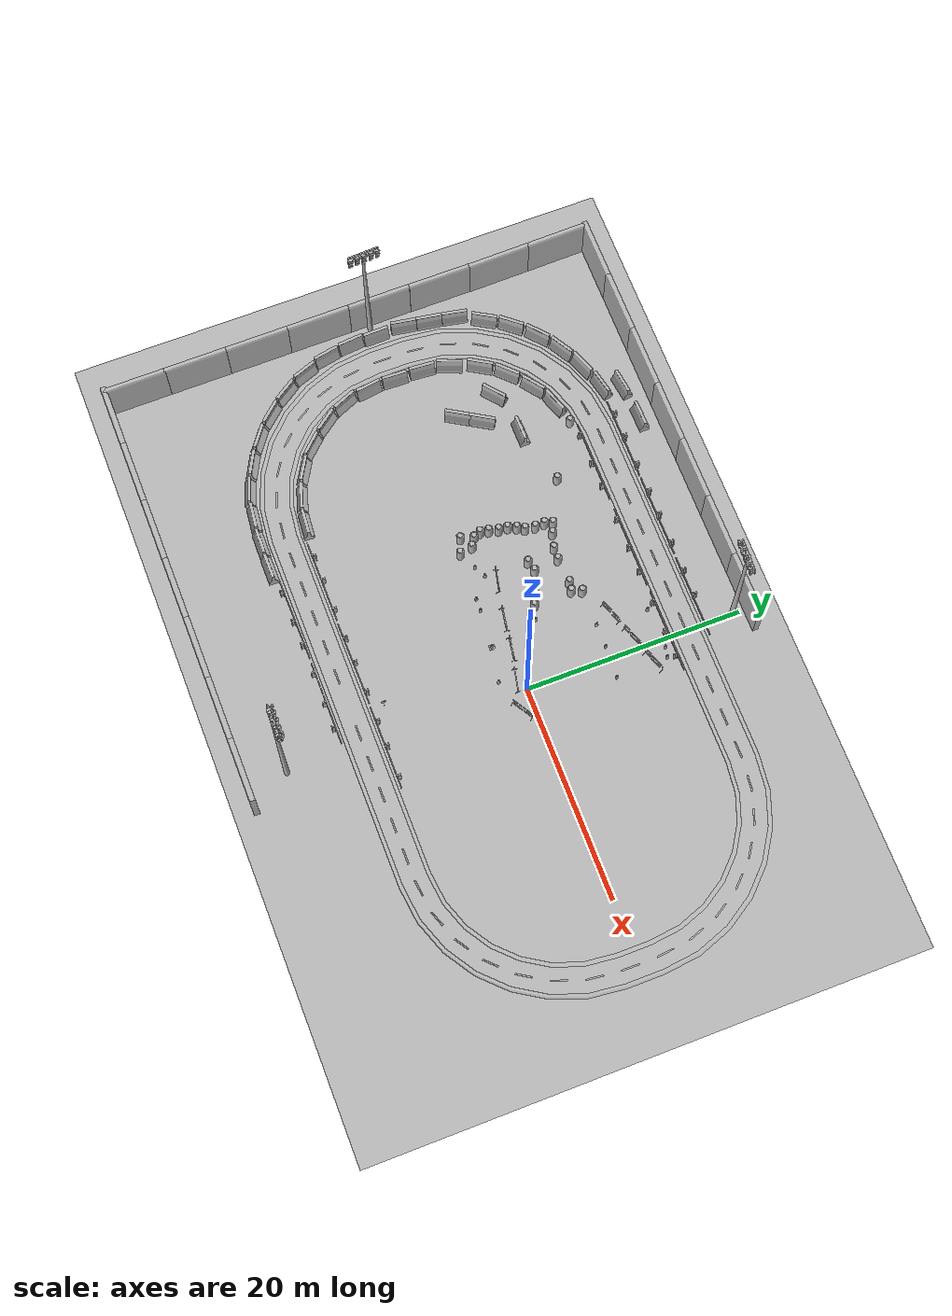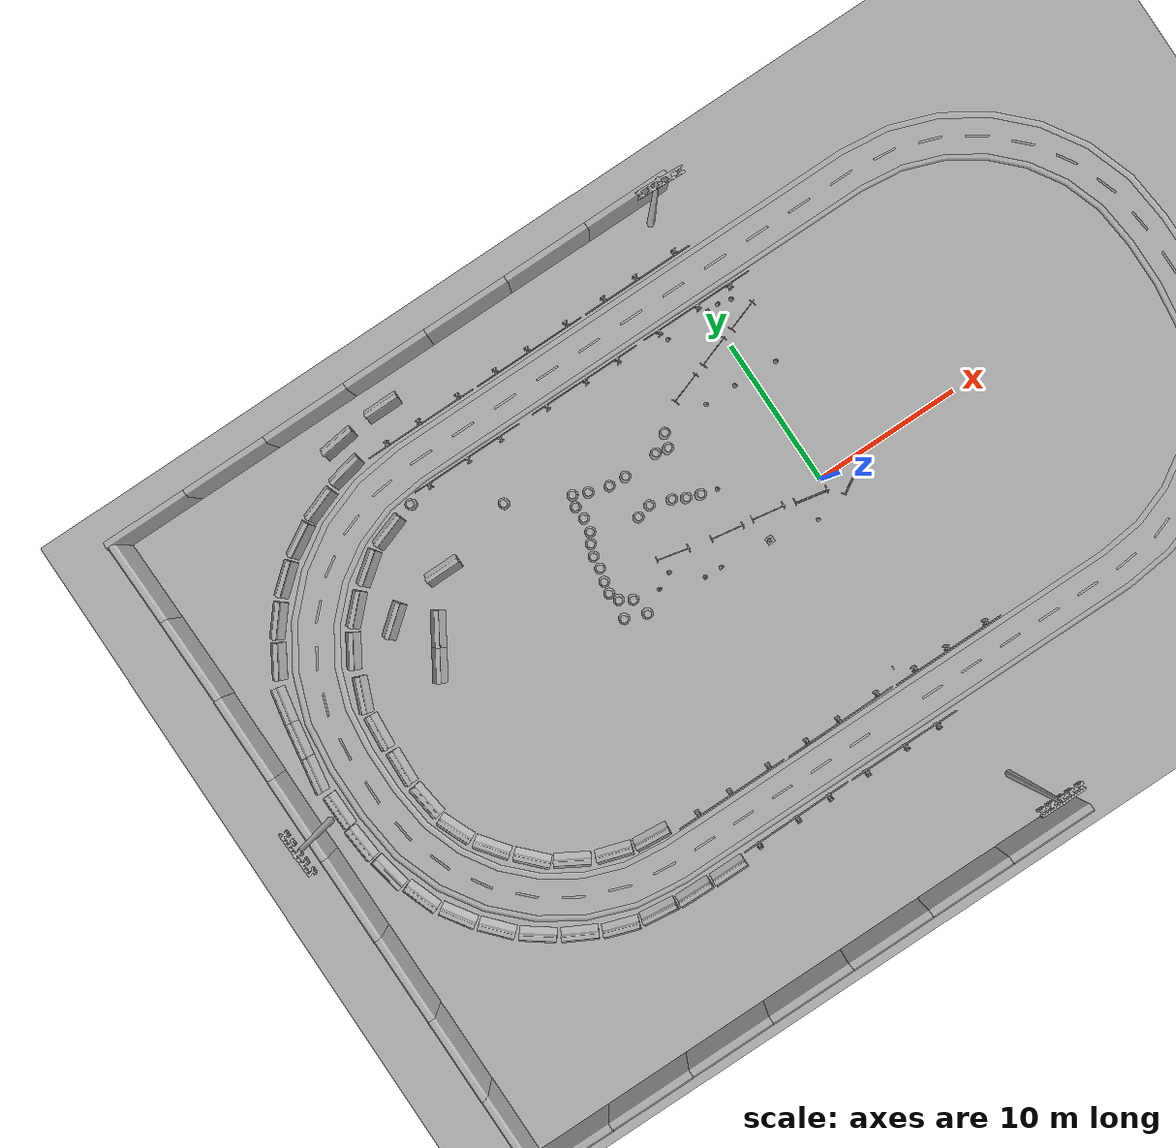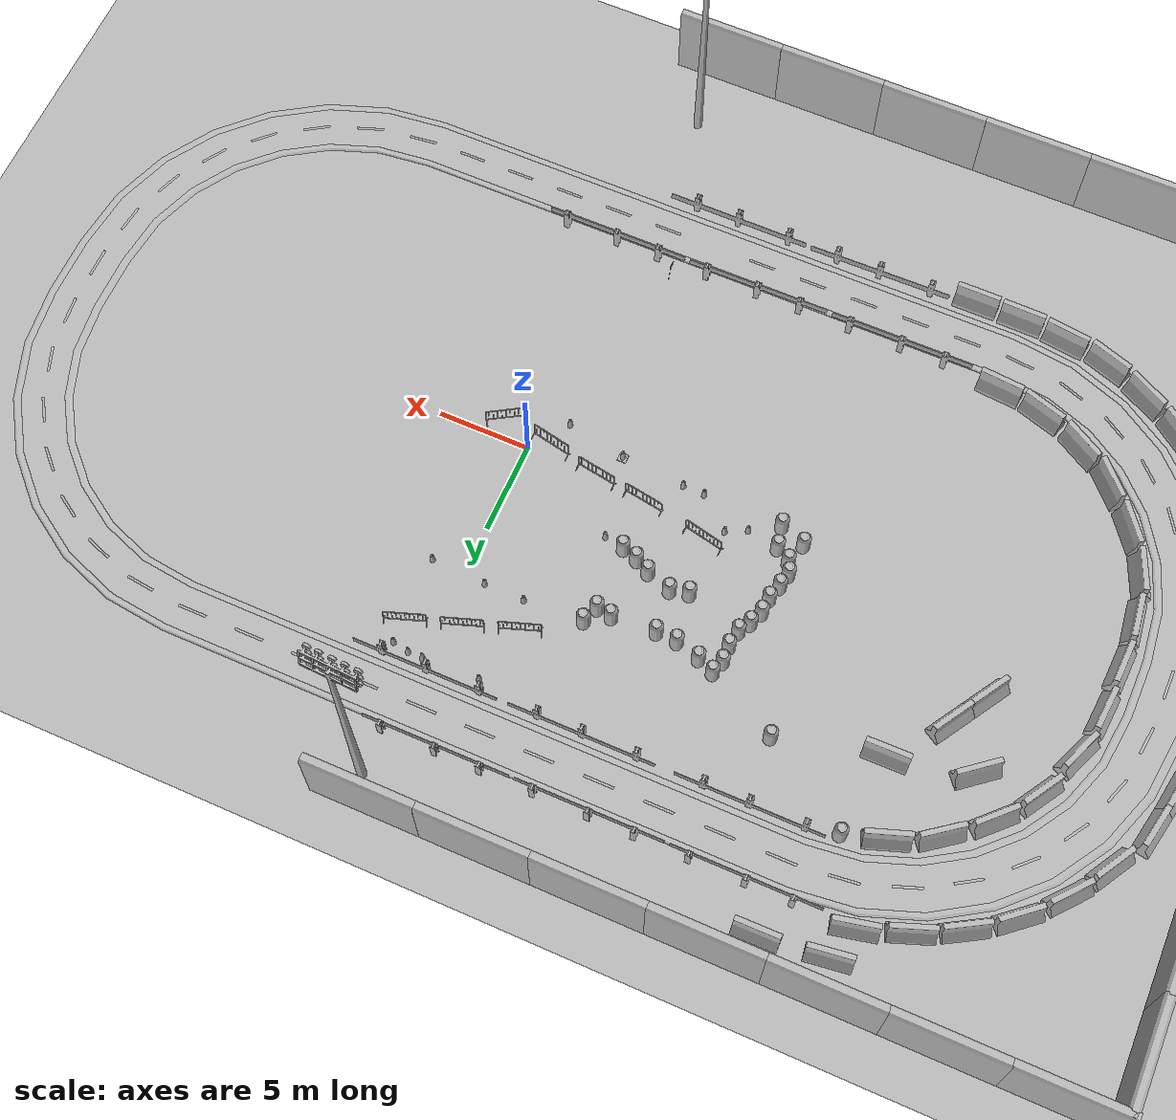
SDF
<sdf version="1.6">
 <world name="default">
  <model name="aws_robomaker_racetrack_CrashworthBucket_01_00">
   <include><uri>model://models/aws_robomaker_racetrack_CrashworthBucket_01</uri></include>
   <pose>-8.47522 4.09403 0.054 0 0 0</pose>
  </model>
  <model name="aws_robomaker_racetrack_CrashworthBucket_01_01">
   <include><uri>model://models/aws_robomaker_racetrack_CrashworthBucket_01</uri></include>
   <pose>-7.67012 3.67698 0.054 0 0 0</pose>
  </model>
  <model name="aws_robomaker_racetrack_CrashworthBucket_01_02">
   <include><uri>model://models/aws_robomaker_racetrack_CrashworthBucket_01</uri></include>
   <pose>-13.6708 -0.983538 0.054 0 0 0</pose>
  </model>
  <model name="aws_robomaker_racetrack_CrashworthBucket_01_03">
   <include><uri>model://models/aws_robomaker_racetrack_CrashworthBucket_01</uri></include>
   <pose>-13.6938 6.13266 0.054 0 0 0</pose>
  </model>
  <model name="aws_robomaker_racetrack_CrashworthBucket_01_20">
   <include><uri>model://models/aws_robomaker_racetrack_CrashworthBucket_01</uri></include>
   <pose>-22.169 12.8311 0 0 -0 0</pose>
  </model>
  <model name="aws_robomaker_racetrack_CrashworthBucket_01_21">
   <include><uri>model://models/aws_robomaker_racetrack_CrashworthBucket_01</uri></include>
   <pose>-17.3216 9.66872 0.054 0 0 0</pose>
  </model>
  <model name="aws_robomaker_racetrack_CrashworthBucket_01_24">
   <include><uri>model://models/aws_robomaker_racetrack_CrashworthBucket_01</uri></include>
   <pose>-15.0558 -0.45872 0 0 -0 0</pose>
  </model>
  <model name="aws_robomaker_racetrack_CrashworthBucket_01_44">
   <include><uri>model://models/aws_robomaker_racetrack_CrashworthBucket_01</uri></include>
   <pose>-13.8311 5.21601 0.054 0 0 0</pose>
  </model>
  <model name="aws_robomaker_racetrack_CrashworthBucket_01_50">
   <include><uri>model://models/aws_robomaker_racetrack_CrashworthBucket_01</uri></include>
   <pose>-6.80733 3.36416 0.054 0 0 0</pose>
  </model>
  <model name="aws_robomaker_racetrack_CrashworthBucket_01_51">
   <include><uri>model://models/aws_robomaker_racetrack_CrashworthBucket_01</uri></include>
   <pose>-9.83411 4.55632 0.054 0 0 0</pose>
  </model>
  <model name="aws_robomaker_racetrack_CrashworthBucket_01_52">
   <include><uri>model://models/aws_robomaker_racetrack_CrashworthBucket_01</uri></include>
   <pose>-10.8194 4.31922 0.054 0 0 0</pose>
  </model>
  <model name="aws_robomaker_racetrack_CrashworthBucket_01_54">
   <include><uri>model://models/aws_robomaker_racetrack_CrashworthBucket_01</uri></include>
   <pose>-10.1026 6.87186 0.054 0 0 0</pose>
  </model>
  <model name="aws_robomaker_racetrack_CrashworthBucket_01_55">
   <include><uri>model://models/aws_robomaker_racetrack_CrashworthBucket_01</uri></include>
   <pose>-11.2375 6.93335 0.054 0 0 0</pose>
  </model>
  <model name="aws_robomaker_racetrack_CrashworthBucket_01_56">
   <include><uri>model://models/aws_robomaker_racetrack_CrashworthBucket_01</uri></include>
   <pose>-13.9209 0.216601 0.054 0 0 0</pose>
  </model>
  <model name="aws_robomaker_racetrack_CrashworthBucket_01_57">
   <include><uri>model://models/aws_robomaker_racetrack_CrashworthBucket_01</uri></include>
   <pose>-7.72969 7.02543 0.054 0 0 0</pose>
  </model>
  <model name="aws_robomaker_racetrack_CrashworthBucket_01_58">
   <include><uri>model://models/aws_robomaker_racetrack_CrashworthBucket_01</uri></include>
   <pose>-6.91293 6.87432 0.054 0 0 0</pose>
  </model>
  <model name="aws_robomaker_racetrack_CrashworthBucket_01_59">
   <include><uri>model://models/aws_robomaker_racetrack_CrashworthBucket_01</uri></include>
   <pose>-6.56208 7.77782 0.054 0 0 0</pose>
  </model>
  <model name="aws_robomaker_racetrack_CrashworthBucket_01_60">
   <include><uri>model://models/aws_robomaker_racetrack_CrashworthBucket_01</uri></include>
   <pose>-14.6963 0.705029 0 0 -0 0.00632</pose>
  </model>
  <model name="aws_robomaker_racetrack_CrashworthBucket_01_61">
   <include><uri>model://models/aws_robomaker_racetrack_CrashworthBucket_01</uri></include>
   <pose>-14.205 4.57376 0.054 0 0 0</pose>
  </model>
  <model name="aws_robomaker_racetrack_CrashworthBucket_01_62">
   <include><uri>model://models/aws_robomaker_racetrack_CrashworthBucket_01</uri></include>
   <pose>-14.8093 2.14739 0.054 0 0 0</pose>
  </model>
  <model name="aws_robomaker_racetrack_CrashworthBucket_01_63">
   <include><uri>model://models/aws_robomaker_racetrack_CrashworthBucket_01</uri></include>
   <pose>-14.964 1.3691 0.054 0 0 0.003001</pose>
  </model>
  <model name="aws_robomaker_racetrack_CrashworthBucket_01_64">
   <include><uri>model://models/aws_robomaker_racetrack_CrashworthBucket_01</uri></include>
   <pose>-14.5066 3.82709 0.054 0 0 -0.127634</pose>
  </model>
  <model name="aws_robomaker_racetrack_CrashworthBucket_01_65">
   <include><uri>model://models/aws_robomaker_racetrack_CrashworthBucket_01</uri></include>
   <pose>-14.5756 2.99063 0.054 0 0 0</pose>
  </model>
  <model name="aws_robomaker_racetrack_CrashworthBucket_01_66">
   <include><uri>model://models/aws_robomaker_racetrack_CrashworthBucket_01</uri></include>
   <pose>-13.7254 7.00826 0.054 0 0 0</pose>
  </model>
  <model name="aws_robomaker_racetrack_CrashworthBucket_01_67">
   <include><uri>model://models/aws_robomaker_racetrack_CrashworthBucket_01</uri></include>
   <pose>-13.4797 7.73167 0.054 0 0 0</pose>
  </model>
  <model name="aws_robomaker_racetrack_CrashworthBucket_01_68">
   <include><uri>model://models/aws_robomaker_racetrack_CrashworthBucket_01</uri></include>
   <pose>-12.5612 7.3288 0.054 0 0 0</pose>
  </model>
  <model name="aws_robomaker_racetrack_Fence_01_01">
   <include><uri>model://models/aws_robomaker_racetrack_Fence_01</uri></include>
   <pose>-0.500271 13.158695 0 0 0 -1.57272</pose>
  </model>
  <model name="aws_robomaker_racetrack_Fence_01_02">
   <include><uri>model://models/aws_robomaker_racetrack_Fence_01</uri></include>
   <pose>-8.897229 13.158695 0 0 0 -1.57272</pose>
  </model>
  <model name="aws_robomaker_racetrack_Fence_01_03">
   <include><uri>model://models/aws_robomaker_racetrack_Fence_01</uri></include>
   <pose>-17.681196 13.158695 0 0 0 -1.57272</pose>
  </model>
  <model name="aws_robomaker_racetrack_Fence_01_04">
   <include><uri>model://models/aws_robomaker_racetrack_Fence_01</uri></include>
   <pose>-12.990376 -16.857170 0.054 -0.0 0.0 -1.558614</pose>
  </model>
  <model name="aws_robomaker_racetrack_Fence_01_05">
   <include><uri>model://models/aws_robomaker_racetrack_Fence_01</uri></include>
   <pose>-4.880881 -16.849474 0.054  0 0 -1.572721</pose>
  </model>
  <model name="aws_robomaker_racetrack_Fence_01_08">
   <include><uri>model://models/aws_robomaker_racetrack_Fence_01</uri></include>
   <pose>-15.529042 -13.134610 0.054 0 -0 1.57158</pose>
  </model>
  <model name="aws_robomaker_racetrack_Fence_01_09">
   <include><uri>model://models/aws_robomaker_racetrack_Fence_01</uri></include>
   <pose>-7.391050 -13.134610 0.054651 0 0.0 1.580400</pose>
  </model>
  <model name="aws_robomaker_racetrack_Fence_01_10">
   <include><uri>model://models/aws_robomaker_racetrack_Fence_01</uri></include>
   <pose>0.720398 -13.134610 0.054671 0 -0 1.57158</pose>
  </model>
  <model name="aws_robomaker_racetrack_Fence_01_12">
   <include><uri>model://models/aws_robomaker_racetrack_Fence_01</uri></include>
   <pose>-18.882746 16.818918 0.054  0 -0 1.57158</pose>
  </model>
  <model name="aws_robomaker_racetrack_Fence_01_13">
   <include><uri>model://models/aws_robomaker_racetrack_Fence_01</uri></include>
   <pose>-10.776134 16.818918 0.054  0 -0 1.57158</pose>
  </model>
  <model name="aws_robomaker_racetrack_Fence_01_14">
   <include><uri>model://models/aws_robomaker_racetrack_Fence_01</uri></include>
   <pose>-2.679413 16.818918 0 0 -0 1.57158</pose>
  </model>
  <model name="aws_robomaker_racetrack_Fence_02_00">
   <include><uri>model://models/aws_robomaker_racetrack_Fence_02</uri></include>
   <pose>-1.05264 -0.5238 0.040535 -0.008781 0.086261 -1.77545</pose>
  </model>
  <model name="aws_robomaker_racetrack_Fence_02_02">
   <include><uri>model://models/aws_robomaker_racetrack_Fence_02</uri></include>
   <pose>-3.88076 0.08215 0 0 0 -1.73608</pose>
  </model>
  <model name="aws_robomaker_racetrack_Fence_02_03">
   <include><uri>model://models/aws_robomaker_racetrack_Fence_02</uri></include>
   <pose>-6.69129 0.495608 0 0 0 -1.73608</pose>
  </model>
  <model name="aws_robomaker_racetrack_Fence_02_04">
   <include><uri>model://models/aws_robomaker_racetrack_Fence_02</uri></include>
   <pose>-10.283561 1.223148 0.054 0 0 -1.789875</pose>
  </model>
  <model name="aws_robomaker_racetrack_Fence_02_07">
   <include><uri>model://models/aws_robomaker_racetrack_Fence_02</uri></include>
   <pose>1.60246 11.2143 0 0 -0 1.90339</pose>
  </model>
  <model name="aws_robomaker_racetrack_Fence_02_08">
   <include><uri>model://models/aws_robomaker_racetrack_Fence_02</uri></include>
   <pose>-1.13 10.3272 0 0 -0 1.90339</pose>
  </model>
  <model name="aws_robomaker_racetrack_Fence_02_09">
   <include><uri>model://models/aws_robomaker_racetrack_Fence_02</uri></include>
   <pose>-3.85384 9.39461 0 0 -0 1.90339</pose>
  </model>
  <model name="aws_robomaker_racetrack_Fence_02_12">
   <include><uri>model://models/aws_robomaker_racetrack_Fence_02</uri></include>
   <pose>1.65856 -1.03383 0 0 0 -1.02955</pose>
  </model>
  <model name="aws_robomaker_racetrack_StonePier_01_00">
   <include><uri>model://models/aws_robomaker_racetrack_StonePier_01</uri></include>
   <pose>-21.1732 -12.7799 0.054 0 -0 -0.086667</pose>
  </model>
  <model name="aws_robomaker_racetrack_StonePier_01_01">
   <include><uri>model://models/aws_robomaker_racetrack_StonePier_01</uri></include>
   <pose>-23.6727 -12.2854 0.054 0 -0.0 -0.301631</pose>
  </model>
  <model name="aws_robomaker_racetrack_StonePier_01_02">
   <include><uri>model://models/aws_robomaker_racetrack_StonePier_01</uri></include>
   <pose>-22.8128 8.293 0.054 0 -0 0.009742</pose>
  </model>
  <model name="aws_robomaker_racetrack_StonePier_01_03">
   <include><uri>model://models/aws_robomaker_racetrack_StonePier_01</uri></include>
   <pose>-24.2891 12.2118 0.054 0 -0 0.334226</pose>
  </model>
  <model name="aws_robomaker_racetrack_StonePier_01_04">
   <include><uri>model://models/aws_robomaker_racetrack_StonePier_01</uri></include>
   <pose>-20.3219 18.8912 0.054 0 -0.0 0.009742</pose>
  </model>
  <model name="aws_robomaker_racetrack_StonePier_01_35">
   <include><uri>model://models/aws_robomaker_racetrack_StonePier_01</uri></include>
   <pose>-23.832 18.561 0.054 -0 -0.0 0.133251</pose>
  </model>
  <model name="aws_robomaker_racetrack_StonePier_01_36">
   <include><uri>model://models/aws_robomaker_racetrack_StonePier_01</uri></include>
   <pose>-26.5946 11.0295 0.054 0 0.00036 0.646791</pose>
  </model>
  <model name="aws_robomaker_racetrack_StonePier_01_37">
   <include><uri>model://models/aws_robomaker_racetrack_StonePier_01</uri></include>
   <pose>-24.4271 16.8105 0.054 -0 -0.0 0.217772</pose>
  </model>
  <model name="aws_robomaker_racetrack_StonePier_01_38">
   <include><uri>model://models/aws_robomaker_racetrack_StonePier_01</uri></include>
   <pose>-28.6752 9.30494 0.054 0 -0.0 0.789682</pose>
  </model>
  <model name="aws_robomaker_racetrack_StonePier_01_39">
   <include><uri>model://models/aws_robomaker_racetrack_StonePier_01</uri></include>
   <pose>-30.2584 7.24451 0.054 -0 -0.0 1.02306</pose>
  </model>
  <model name="aws_robomaker_racetrack_StonePier_01_40">
   <include><uri>model://models/aws_robomaker_racetrack_StonePier_01</uri></include>
   <pose>-18.3212 -17.1986 0.054 0 -0.0 -0.000165</pose>
  </model>
  <model name="aws_robomaker_racetrack_StonePier_01_41">
   <include><uri>model://models/aws_robomaker_racetrack_StonePier_01</uri></include>
   <pose>-26.1157 -11.2238 0.054 0 -0.0 -0.528829</pose>
  </model>
  <model name="aws_robomaker_racetrack_StonePier_01_42">
   <include><uri>model://models/aws_robomaker_racetrack_StonePier_01</uri></include>
   <pose>-28.1466 -9.75745 0.054 0 -0.0 -0.811127</pose>
  </model>
  <model name="aws_robomaker_racetrack_StonePier_01_43">
   <include><uri>model://models/aws_robomaker_racetrack_StonePier_01</uri></include>
   <pose>-29.8572 -7.79098 0.054 0 -0.0 -0.924577</pose>
  </model>
  <model name="aws_robomaker_racetrack_StonePier_01_44">
   <include><uri>model://models/aws_robomaker_racetrack_StonePier_01</uri></include>
   <pose>-31.1336 -5.56451 0.054 0 -0.0 -1.16956</pose>
  </model>
  <model name="aws_robomaker_racetrack_StonePier_01_45">
   <include><uri>model://models/aws_robomaker_racetrack_StonePier_01</uri></include>
   <pose>-31.6395 -3.07904 0.054 -0 -0.0 -1.43795</pose>
  </model>
  <model name="aws_robomaker_racetrack_StonePier_01_46">
   <include><uri>model://models/aws_robomaker_racetrack_StonePier_01</uri></include>
   <pose>-31.7709 -0.48849 0.054 0 -0.0 -1.61074</pose>
  </model>
  <model name="aws_robomaker_racetrack_StonePier_01_47">
   <include><uri>model://models/aws_robomaker_racetrack_StonePier_01</uri></include>
   <pose>-31.7363 2.12666 0.054 0 -0.0 -1.64853</pose>
  </model>
  <model name="aws_robomaker_racetrack_StonePier_01_48">
   <include><uri>model://models/aws_robomaker_racetrack_StonePier_01</uri></include>
   <pose>-31.2901 4.63965 0.054 -0 -0.0 -1.9545</pose>
  </model>
  <model name="aws_robomaker_racetrack_StonePier_01_49">
   <include><uri>model://models/aws_robomaker_racetrack_StonePier_01</uri></include>
   <pose>-25.0833 5.46077 -2.5e-05 2e-06 -2e-05 -2.1191</pose>
  </model>
  <model name="aws_robomaker_racetrack_StonePier_01_50">
   <include><uri>model://models/aws_robomaker_racetrack_StonePier_01</uri></include>
   <pose>-26.2415 3.56444 -3.6e-05 1e-06 -2.8e-05 -2.1191</pose>
  </model>
  <model name="aws_robomaker_racetrack_StonePier_01_51">
   <include><uri>model://models/aws_robomaker_racetrack_StonePier_01</uri></include>
   <pose>-27.0954 7.40849 0.054 -0 0.00036 -2.46174</pose>
  </model>
  <model name="aws_robomaker_racetrack_StonePier_01_52">
   <include><uri>model://models/aws_robomaker_racetrack_StonePier_01</uri></include>
   <pose>-28.2666 -15.3279 0.054 0 0.00036 -0.483595</pose>
  </model>
  <model name="aws_robomaker_racetrack_StonePier_01_53">
   <include><uri>model://models/aws_robomaker_racetrack_StonePier_01</uri></include>
   <pose>-30.4813 -13.931 0.054 0 -0.0 2.50624</pose>
  </model>
  <model name="aws_robomaker_racetrack_StonePier_01_54">
   <include><uri>model://models/aws_robomaker_racetrack_StonePier_01</uri></include>
   <pose>-32.3931 -12.181 0.054 0 -0.0 2.30053</pose>
  </model>
  <model name="aws_robomaker_racetrack_StonePier_01_55">
   <include><uri>model://models/aws_robomaker_racetrack_StonePier_01</uri></include>
   <pose>-33.9725 -10.1825 0.054 0 -0.0 2.15404</pose>
  </model>
  <model name="aws_robomaker_racetrack_StonePier_01_56">
   <include><uri>model://models/aws_robomaker_racetrack_StonePier_01</uri></include>
   <pose>-35.2144 -7.92381 0.054 0 -0.0 1.91826</pose>
  </model>
  <model name="aws_robomaker_racetrack_StonePier_01_57">
   <include><uri>model://models/aws_robomaker_racetrack_StonePier_01</uri></include>
   <pose>-36.4999 -3.03273 0.054 -0 0.00036 -1.47965</pose>
  </model>
  <model name="aws_robomaker_racetrack_StonePier_01_58">
   <include><uri>model://models/aws_robomaker_racetrack_StonePier_01</uri></include>
   <pose>-36.5369 -0.578473 -0.000468 -0 0.000348 1.59189</pose>
  </model>
  <model name="aws_robomaker_racetrack_StonePier_01_59">
   <include><uri>model://models/aws_robomaker_racetrack_StonePier_01</uri></include>
   <pose>-36.0789 -5.53149 0.054 0 -0.0 1.76121</pose>
  </model>
  <model name="aws_robomaker_racetrack_StonePier_01_60">
   <include><uri>model://models/aws_robomaker_racetrack_StonePier_01</uri></include>
   <pose>-36.5742 2.13483 -4.9e-05 -4.8e-05 -6.2e-05 1.40891</pose>
  </model>
  <model name="aws_robomaker_racetrack_StonePier_01_61">
   <include><uri>model://models/aws_robomaker_racetrack_StonePier_01</uri></include>
   <pose>-36.1891 4.48288 0.000698 -7e-05 -0.000662 1.40758</pose>
  </model>
  <model name="aws_robomaker_racetrack_StonePier_01_62">
   <include><uri>model://models/aws_robomaker_racetrack_StonePier_01</uri></include>
   <pose>-35.7706 6.79941 0.00067 5.5e-05 0.000534 1.37633</pose>
  </model>
  <model name="aws_robomaker_racetrack_StonePier_01_63">
   <include><uri>model://models/aws_robomaker_racetrack_StonePier_01</uri></include>
   <pose>-34.5101 9.28526 0.054 0 -0.0 1.03684</pose>
  </model>
  <model name="aws_robomaker_racetrack_StonePier_01_64">
   <include><uri>model://models/aws_robomaker_racetrack_StonePier_01</uri></include>
   <pose>-33.1083 11.4014 0.054 0 -0.0 0.877747</pose>
  </model>
  <model name="aws_robomaker_racetrack_StonePier_01_65">
   <include><uri>model://models/aws_robomaker_racetrack_StonePier_01</uri></include>
   <pose>-31.2882 13.312 0.054 -0 -0.0 0.701782</pose>
  </model>
  <model name="aws_robomaker_racetrack_StonePier_01_66">
   <include><uri>model://models/aws_robomaker_racetrack_StonePier_01</uri></include>
   <pose>-29.1909 14.829 0.054 0 -0.0 0.529025</pose>
  </model>
  <model name="aws_robomaker_racetrack_StonePier_01_67">
   <include><uri>model://models/aws_robomaker_racetrack_StonePier_01</uri></include>
   <pose>-26.9181 15.9588 0.054 0 -0.0 0.349577</pose>
  </model>
  <model name="aws_robomaker_racetrack_StonePier_01_68">
   <include><uri>model://models/aws_robomaker_racetrack_StonePier_01</uri></include>
   <pose>-20.8526 -17.1365 0.054 -0 0.00036 -0.016586</pose>
  </model>
  <model name="aws_robomaker_racetrack_StonePier_01_69">
   <include><uri>model://models/aws_robomaker_racetrack_StonePier_01</uri></include>
   <pose>-23.3756 -16.9024 0.054 0 -0.0 -0.119704</pose>
  </model>
  <model name="aws_robomaker_racetrack_StonePier_01_70">
   <include><uri>model://models/aws_robomaker_racetrack_StonePier_01</uri></include>
   <pose>-25.8909 -16.4126 0.054 0 -0.0 -0.32217</pose>
  </model>
  <model name="aws_robomaker_racetrack_StopSign_01_00">
   <include><uri>model://models/aws_robomaker_racetrack_StopSign_01</uri></include>
   <pose>-2.7487 -12.1054 0.000775 0.075944 0.005053 -1.56731</pose>
  </model>
  <model name="aws_robomaker_racetrack_Track_05_00">
   <include><uri>model://models/aws_robomaker_racetrack_Track_05</uri></include>
   <pose>0 0 0.051 0 -0 0</pose>
  </model>
  <model name="aws_robomaker_racetrack_Trackline_01_00">
   <include><uri>model://models/aws_robomaker_racetrack_Trackline_01</uri></include>
   <pose>-4.24539 0 0.102 0 -0 0</pose>
  </model>
  <model name="aws_robomaker_racetrack_TrafficCone_01_00">
   <include><uri>model://models/aws_robomaker_racetrack_TrafficCone_01</uri></include>
   <pose>-9.379170 -1.123267 0 0 -0 0</pose>
  </model>
  <model name="aws_robomaker_racetrack_TrafficCone_01_01">
   <include><uri>model://models/aws_robomaker_racetrack_TrafficCone_01</uri></include>
   <pose>-12.1926 -0.169504 0 0 -0 0</pose>
  </model>
  <model name="aws_robomaker_racetrack_TrafficCone_01_02">
   <include><uri>model://models/aws_robomaker_racetrack_TrafficCone_01</uri></include>
   <pose>-11.1147 0.36652 0 0 -0 0</pose>
  </model>
  <model name="aws_robomaker_racetrack_TrafficCone_01_03">
   <include><uri>model://models/aws_robomaker_racetrack_TrafficCone_01</uri></include>
   <pose>-8.204195 -1.168056 0 0 -0 0</pose>
  </model>
  <model name="aws_robomaker_racetrack_TrafficCone_01_04">
   <include><uri>model://models/aws_robomaker_racetrack_TrafficCone_01</uri></include>
   <pose>-5.69629 3.05056 0 0 -0 0</pose>
  </model>
  <model name="aws_robomaker_racetrack_TrafficCone_01_05">
   <include><uri>model://models/aws_robomaker_racetrack_TrafficCone_01</uri></include>
   <pose>1.63274 12.4879 0 0 -0 0</pose>
  </model>
  <model name="aws_robomaker_racetrack_TrafficCone_01_06">
   <include><uri>model://models/aws_robomaker_racetrack_TrafficCone_01</uri></include>
   <pose>0.741449 12.6798 0 0 -0 0</pose>
  </model>
  <model name="aws_robomaker_racetrack_TrafficCone_01_07">
   <include><uri>model://models/aws_robomaker_racetrack_TrafficCone_01</uri></include>
   <pose>-0.041804 12.6793 0 0 -0 0</pose>
  </model>
  <model name="aws_robomaker_racetrack_TrafficCone_01_08">
   <include><uri>model://models/aws_robomaker_racetrack_TrafficCone_01</uri></include>
   <pose>-1.478687 -2.047922 0 0 0 0</pose>
  </model>
  <model name="aws_robomaker_racetrack_TrafficCone_01_09">
   <include><uri>model://models/aws_robomaker_racetrack_TrafficCone_01</uri></include>
   <pose>-3.07094 12.5681 0 0 -0 0</pose>
  </model>
  <model name="aws_robomaker_racetrack_TrafficCone_01_10">
   <include><uri>model://models/aws_robomaker_racetrack_TrafficCone_01</uri></include>
   <pose>-4.721023 -1.439288 0.054 0 -0 0</pose>
  </model>
  <model name="aws_robomaker_racetrack_TrafficCone_01_11">
   <include><uri>model://models/aws_robomaker_racetrack_TrafficCone_01</uri></include>
   <pose>-1.18613 7.84487 0 0 -0 0</pose>
  </model>
  <model name="aws_robomaker_racetrack_TrafficCone_01_12">
   <include><uri>model://models/aws_robomaker_racetrack_TrafficCone_01</uri></include>
   <pose>-3.3402 7.8678 0 0 -0 0</pose>
  </model>
  <model name="aws_robomaker_racetrack_TrafficCone_01_13">
   <include><uri>model://models/aws_robomaker_racetrack_TrafficCone_01</uri></include>
   <pose>1.78217 7.69024 0 0 -0 0</pose>
  </model>
  <model name="aws_robomaker_racetrack_Ground_01_00">
   <include><uri>model://models/aws_robomaker_racetrack_Ground_01</uri></include>
   <pose>-4.9 -2 0.05 0 -0 0</pose>
  </model>
  <model name="aws_robomaker_racetrack_Light_01_00">
   <include><uri>model://models/aws_robomaker_racetrack_Light_01</uri></include>
   <pose>-0.355802 -21.7691 0 0 -0 0</pose>
  </model>
  <model name="aws_robomaker_racetrack_Light_01_01">
   <include><uri>model://models/aws_robomaker_racetrack_Light_01</uri></include>
   <pose>0.041158 19.0887 0 0 -0 3.09146</pose>
  </model>
  <model name="aws_robomaker_racetrack_Light_01_03">
   <include><uri>model://models/aws_robomaker_racetrack_Light_01</uri></include>
   <pose>-37.2567 -0.808964 0 0 0 -1.52672</pose>
  </model>
  <model name="aws_robomaker_racetrack_Wall_01_02">
   <include><uri>model://models/aws_robomaker_racetrack_Wall_01</uri></include>
   <pose>-0.883158 20.684 0 0 -0 0</pose>
  </model>
  <model name="aws_robomaker_racetrack_Wall_01_03">
   <include><uri>model://models/aws_robomaker_racetrack_Wall_01</uri></include>
   <pose>-6.71068 20.6834 0 0 -0 0</pose>
  </model>
  <model name="aws_robomaker_racetrack_Wall_01_04">
   <include><uri>model://models/aws_robomaker_racetrack_Wall_01</uri></include>
   <pose>-12.5489 20.683 0 0 -0 0</pose>
  </model>
  <model name="aws_robomaker_racetrack_Wall_01_05">
   <include><uri>model://models/aws_robomaker_racetrack_Wall_01</uri></include>
   <pose>-18.3809 20.685 0 0 -0 0</pose>
  </model>
  <model name="aws_robomaker_racetrack_Wall_01_06">
   <include><uri>model://models/aws_robomaker_racetrack_Wall_01</uri></include>
   <pose>-24.2154 20.6835 0 0 -0 0</pose>
  </model>
  <model name="aws_robomaker_racetrack_Wall_01_07">
   <include><uri>model://models/aws_robomaker_racetrack_Wall_01</uri></include>
   <pose>-30.0218 20.682 0 0 -0 0</pose>
  </model>
  <model name="aws_robomaker_racetrack_Wall_01_08">
   <include><uri>model://models/aws_robomaker_racetrack_Wall_01</uri></include>
   <pose>-35.8134 20.6795 0 0 -0 0</pose>
  </model>
  <model name="aws_robomaker_racetrack_Wall_01_09">
   <include><uri>model://models/aws_robomaker_racetrack_Wall_01</uri></include>
   <pose>-35.6316 -25.5235 0 0 -0 3.14066</pose>
  </model>
  <model name="aws_robomaker_racetrack_Wall_01_10">
   <include><uri>model://models/aws_robomaker_racetrack_Wall_01</uri></include>
   <pose>-29.8183 -25.5224 0 0 -0 0</pose>
  </model>
  <model name="aws_robomaker_racetrack_Wall_01_11">
   <include><uri>model://models/aws_robomaker_racetrack_Wall_01</uri></include>
   <pose>-23.9919 -25.5182 0 0 -0 0</pose>
  </model>
  <model name="aws_robomaker_racetrack_Wall_01_12">
   <include><uri>model://models/aws_robomaker_racetrack_Wall_01</uri></include>
   <pose>-18.1656 -25.5178 0 0 -0 0</pose>
  </model>
  <model name="aws_robomaker_racetrack_Wall_01_13">
   <include><uri>model://models/aws_robomaker_racetrack_Wall_01</uri></include>
   <pose>-12.3608 -25.513 0 0 -0 0</pose>
  </model>
  <model name="aws_robomaker_racetrack_Wall_01_14">
   <include><uri>model://models/aws_robomaker_racetrack_Wall_01</uri></include>
   <pose>-6.53417 -25.5081 0 0 -0 0</pose>
  </model>
  <model name="aws_robomaker_racetrack_Wall_01_15">
   <include><uri>model://models/aws_robomaker_racetrack_Wall_01</uri></include>
   <pose>-0.701372 -25.5056 0 0 -0 0</pose>
  </model>
  <model name="aws_robomaker_racetrack_Wall_01_24">
   <include><uri>model://models/aws_robomaker_racetrack_Wall_01</uri></include>
   <pose>-38.3722 17.8758 0 0 -0 1.58903</pose>
  </model>
  <model name="aws_robomaker_racetrack_Wall_01_25">
   <include><uri>model://models/aws_robomaker_racetrack_Wall_01</uri></include>
   <pose>-38.2759 12.1211 0 0 -0 1.58713</pose>
  </model>
  <model name="aws_robomaker_racetrack_Wall_01_26">
   <include><uri>model://models/aws_robomaker_racetrack_Wall_01</uri></include>
   <pose>-38.2483 6.29377 0 0 -0 1.57459</pose>
  </model>
  <model name="aws_robomaker_racetrack_Wall_01_27">
   <include><uri>model://models/aws_robomaker_racetrack_Wall_01</uri></include>
   <pose>-38.2488 0.480728 0 0 -0 1.57459</pose>
  </model>
  <model name="aws_robomaker_racetrack_Wall_01_28">
   <include><uri>model://models/aws_robomaker_racetrack_Wall_01</uri></include>
   <pose>-38.2283 -5.33883 0 0 -0 1.57459</pose>
  </model>
  <model name="aws_robomaker_racetrack_Wall_01_29">
   <include><uri>model://models/aws_robomaker_racetrack_Wall_01</uri></include>
   <pose>-38.2023 -11.1666 0 0 -0 1.57459</pose>
  </model>
  <model name="aws_robomaker_racetrack_Wall_01_30">
   <include><uri>model://models/aws_robomaker_racetrack_Wall_01</uri></include>
   <pose>-38.1849 -16.999 0 0 -0 1.57459</pose>
  </model>
  <model name="aws_robomaker_racetrack_Wall_01_31">
   <include><uri>model://models/aws_robomaker_racetrack_Wall_01</uri></include>
   <pose>-38.1615 -22.7433 0 0 -0 1.57459</pose>
  </model>
  <model name="ground_plane">
   <pose>0 0 -1 0 -0 0</pose>
   <scale>1 1 1</scale>
   <link name="link">
    <pose>0 0 -1 0 -0 0</pose>
    <velocity>0 0 0 0 -0 0</velocity>
    <acceleration>0 0 0 0 -0 0</acceleration>
   </link>
  </model>
 </world>
</sdf>
